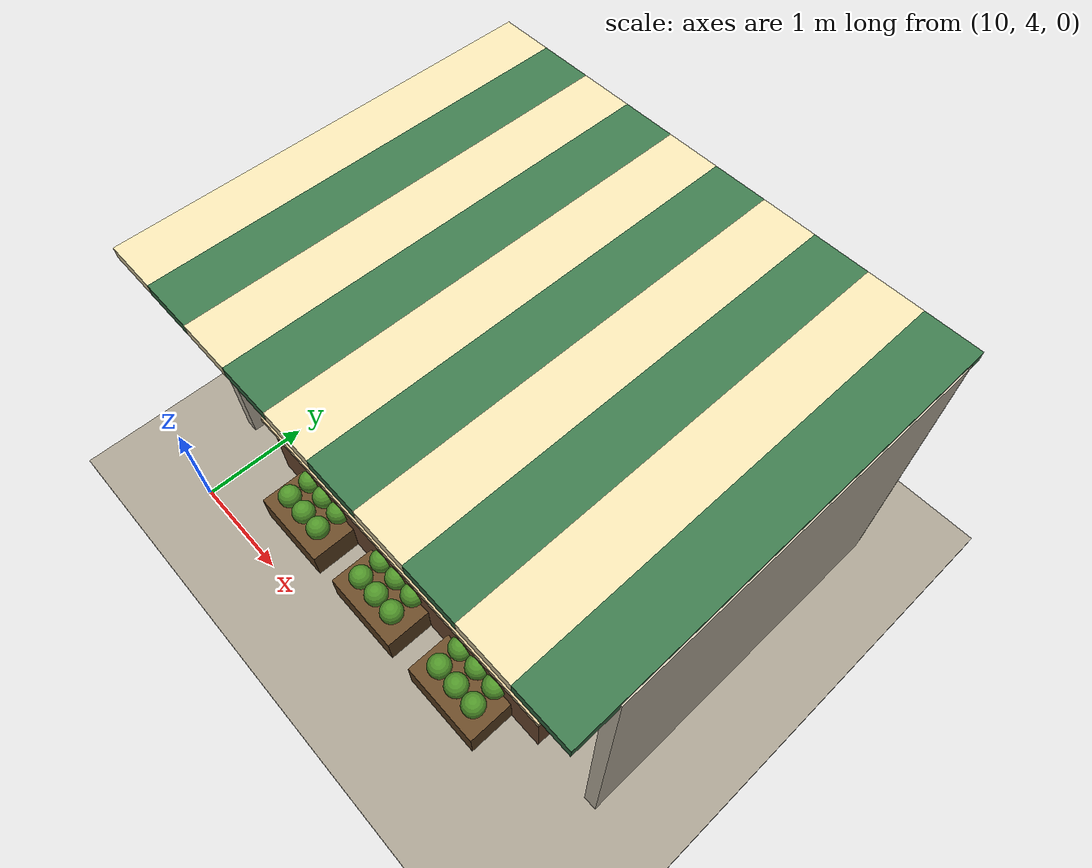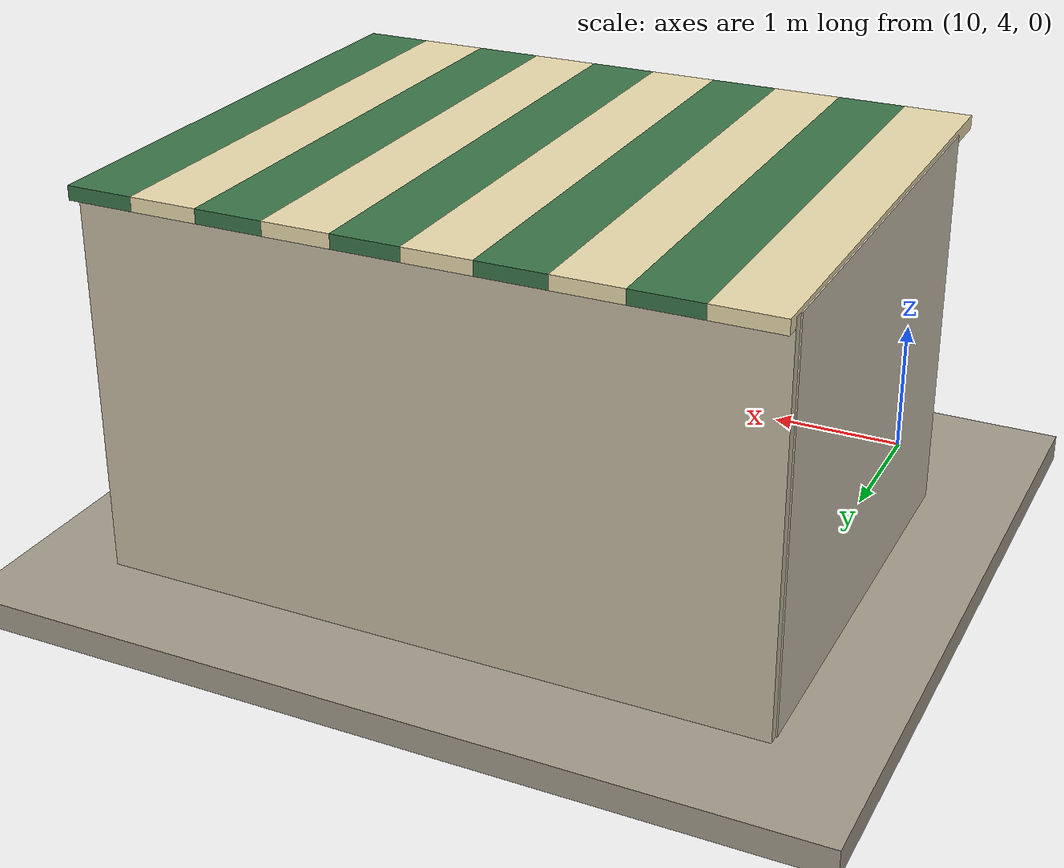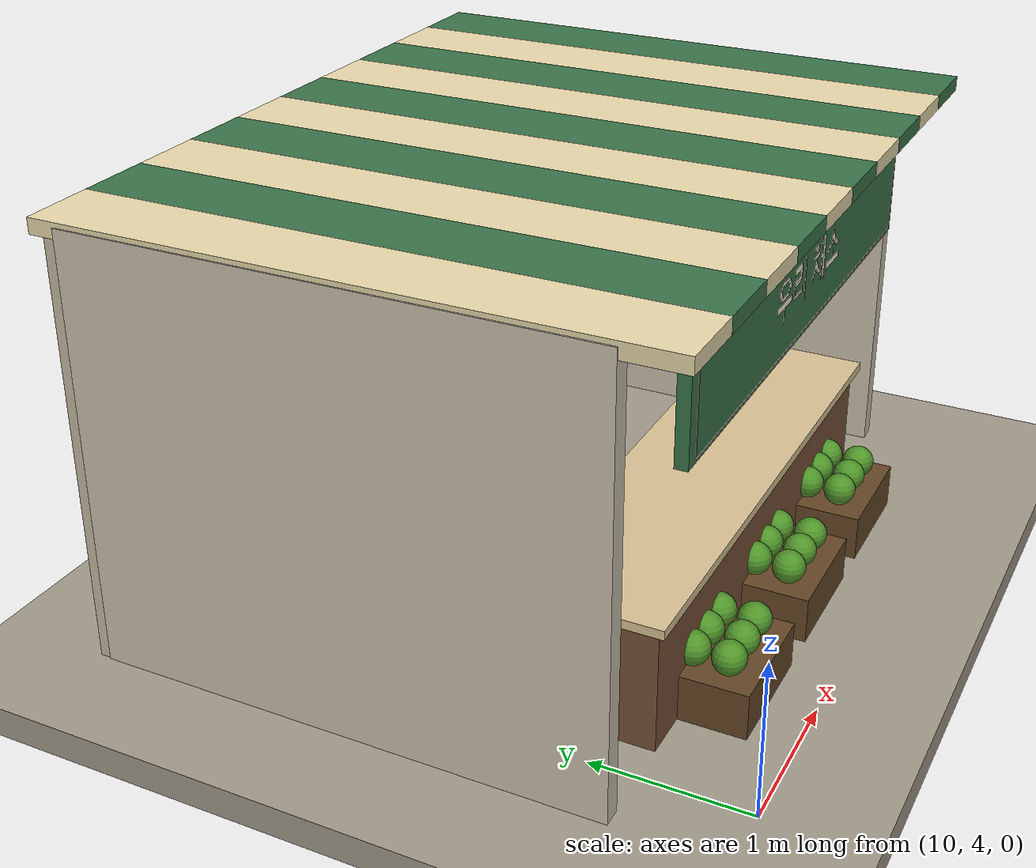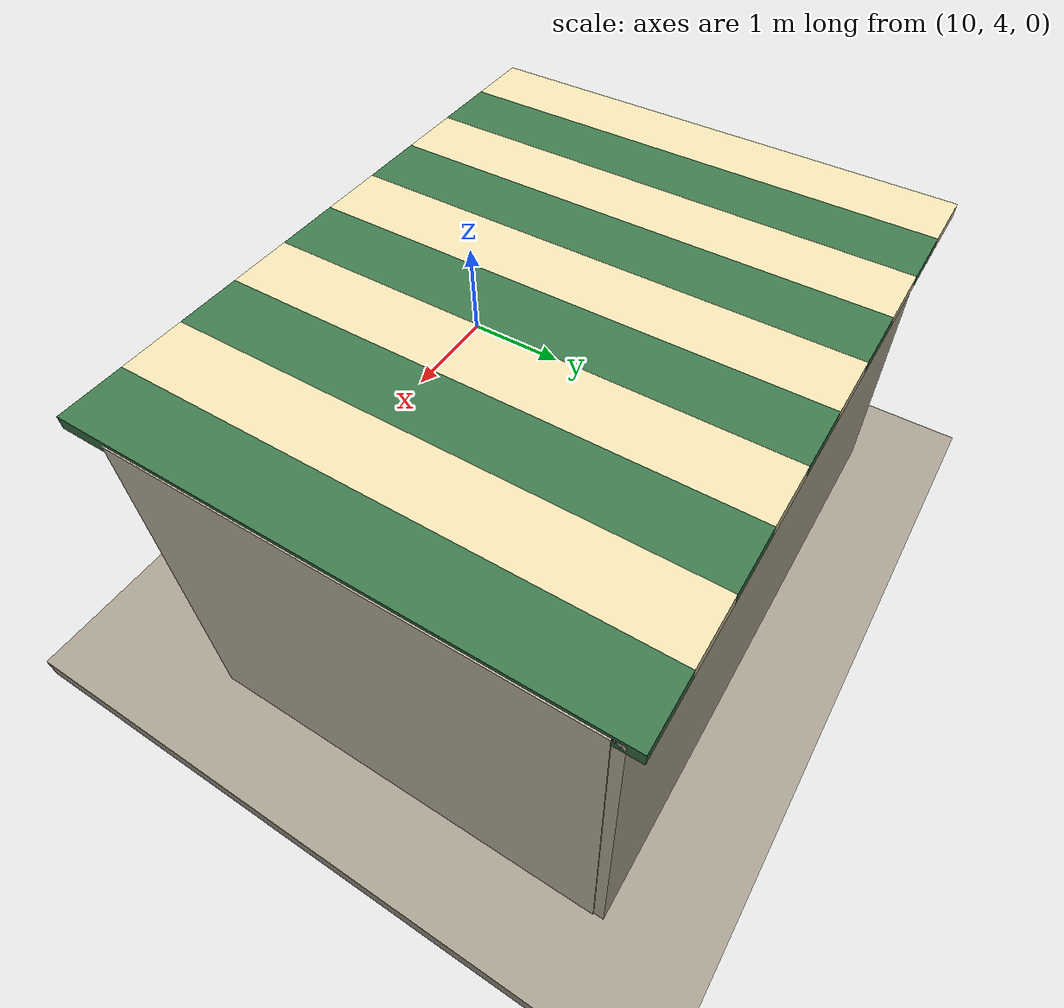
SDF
<sdf version="1.10">
 <world name="swan_town">
  <model name="ground_plane">
   <pose>-14 30 -0.025 0 0 0</pose>
   <static>true</static>
   <link name="link">
    <collision name="collision">
     <geometry><plane><normal>0 0 1</normal><size>100 100</size></plane></geometry>
    </collision>
    <visual name="visual">
     <geometry><plane><normal>0 0 1</normal><size>100 100</size></plane></geometry>
     <material><ambient>0.3 0.5 0.2 1</ambient><diffuse>0.3 0.5 0.2 1</diffuse></material>
    </visual>
   </link>
  </model>
  <model name="ground">
   <static>true</static>
   <pose>15 0 -0.1 0 0 0</pose>
   <link name="body">
    <collision name="box_collision"><geometry><box><size>46 24 0.2</size></box></geometry></collision>
    <visual name="box_visual">
     <geometry><box><size>46 24 0.2</size></box></geometry>
     <material><ambient>0.64 0.61 0.55 1</ambient><diffuse>0.64 0.61 0.55 1</diffuse></material>
    </visual>
   </link>
  </model>
  <model name="stall_01">
   <static>true</static>
   <pose>12 6.3425 0 0 0 0</pose>
   <link name="body">
    <collision name="rear_collision">
     <pose>0 1.65 1.4 0 0 0</pose>
     <geometry><box><size>4.8 0.15 2.8</size></box></geometry>
    </collision>
    <visual name="rear_visual">
     <pose>0 1.65 1.4 0 0 0</pose>
     <geometry><box><size>4.8 0.15 2.8</size></box></geometry>
     <material><ambient>0.78 0.74 0.65 1</ambient><diffuse>0.78 0.74 0.65 1</diffuse></material>
    </visual>
    <collision name="side_-2.35_collision">
     <pose>-2.35 0 1.4 0 0 0</pose>
     <geometry><box><size>0.12 3.3 2.8</size></box></geometry>
    </collision>
    <visual name="side_-2.35_visual">
     <pose>-2.35 0 1.4 0 0 0</pose>
     <geometry><box><size>0.12 3.3 2.8</size></box></geometry>
     <material><ambient>0.81 0.77 0.69 1</ambient><diffuse>0.81 0.77 0.69 1</diffuse></material>
    </visual>
    <collision name="side_2.35_collision">
     <pose>2.35 0 1.4 0 0 0</pose>
     <geometry><box><size>0.12 3.3 2.8</size></box></geometry>
    </collision>
    <visual name="side_2.35_visual">
     <pose>2.35 0 1.4 0 0 0</pose>
     <geometry><box><size>0.12 3.3 2.8</size></box></geometry>
     <material><ambient>0.81 0.77 0.69 1</ambient><diffuse>0.81 0.77 0.69 1</diffuse></material>
    </visual>
    <collision name="counter_collision">
     <pose>0 -1.22 0.4 0 0 0</pose>
     <geometry><box><size>3.5 0.85 0.8</size></box></geometry>
    </collision>
    <visual name="counter_visual">
     <pose>0 -1.22 0.4 0 0 0</pose>
     <geometry><box><size>3.5 0.85 0.8</size></box></geometry>
     <material><ambient>0.47 0.32 0.21 1</ambient><diffuse>0.47 0.32 0.21 1</diffuse></material>
    </visual>
    <collision name="counter_top_collision">
     <pose>0 -1.22 0.83 0 0 0</pose>
     <geometry><box><size>3.6 0.95 0.06</size></box></geometry>
    </collision>
    <visual name="counter_top_visual">
     <pose>0 -1.22 0.83 0 0 0</pose>
     <geometry><box><size>3.6 0.95 0.06</size></box></geometry>
     <material><ambient>0.86 0.77 0.59 1</ambient><diffuse>0.86 0.77 0.59 1</diffuse></material>
    </visual>
    <collision name="awning_0_collision">
     <pose>-2.16 -0.1 2.78 0 0 0</pose>
     <geometry><box><size>0.48 3.85 0.1</size></box></geometry>
    </collision>
    <visual name="awning_0_visual">
     <pose>-2.16 -0.1 2.78 0 0 0</pose>
     <geometry><box><size>0.48 3.85 0.1</size></box></geometry>
     <material><ambient>0.92 0.86 0.68 1</ambient><diffuse>0.92 0.86 0.68 1</diffuse></material>
    </visual>
    <collision name="awning_1_collision">
     <pose>-1.68 -0.1 2.78 0 0 0</pose>
     <geometry><box><size>0.48 3.85 0.1</size></box></geometry>
    </collision>
    <visual name="awning_1_visual">
     <pose>-1.68 -0.1 2.78 0 0 0</pose>
     <geometry><box><size>0.48 3.85 0.1</size></box></geometry>
     <material><ambient>0.23 0.46 0.29 1</ambient><diffuse>0.23 0.46 0.29 1</diffuse></material>
    </visual>
    <collision name="awning_2_collision">
     <pose>-1.2 -0.1 2.78 0 0 0</pose>
     <geometry><box><size>0.48 3.85 0.1</size></box></geometry>
    </collision>
    <visual name="awning_2_visual">
     <pose>-1.2 -0.1 2.78 0 0 0</pose>
     <geometry><box><size>0.48 3.85 0.1</size></box></geometry>
     <material><ambient>0.92 0.86 0.68 1</ambient><diffuse>0.92 0.86 0.68 1</diffuse></material>
    </visual>
    <collision name="awning_3_collision">
     <pose>-0.72 -0.1 2.78 0 0 0</pose>
     <geometry><box><size>0.48 3.85 0.1</size></box></geometry>
    </collision>
    <visual name="awning_3_visual">
     <pose>-0.72 -0.1 2.78 0 0 0</pose>
     <geometry><box><size>0.48 3.85 0.1</size></box></geometry>
     <material><ambient>0.23 0.46 0.29 1</ambient><diffuse>0.23 0.46 0.29 1</diffuse></material>
    </visual>
    <collision name="awning_4_collision">
     <pose>-0.24 -0.1 2.78 0 0 0</pose>
     <geometry><box><size>0.48 3.85 0.1</size></box></geometry>
    </collision>
    <visual name="awning_4_visual">
     <pose>-0.24 -0.1 2.78 0 0 0</pose>
     <geometry><box><size>0.48 3.85 0.1</size></box></geometry>
     <material><ambient>0.92 0.86 0.68 1</ambient><diffuse>0.92 0.86 0.68 1</diffuse></material>
    </visual>
    <collision name="awning_5_collision">
     <pose>0.24 -0.1 2.78 0 0 0</pose>
     <geometry><box><size>0.48 3.85 0.1</size></box></geometry>
    </collision>
    <visual name="awning_5_visual">
     <pose>0.24 -0.1 2.78 0 0 0</pose>
     <geometry><box><size>0.48 3.85 0.1</size></box></geometry>
     <material><ambient>0.23 0.46 0.29 1</ambient><diffuse>0.23 0.46 0.29 1</diffuse></material>
    </visual>
    <collision name="awning_6_collision">
     <pose>0.72 -0.1 2.78 0 0 0</pose>
     <geometry><box><size>0.48 3.85 0.1</size></box></geometry>
    </collision>
    <visual name="awning_6_visual">
     <pose>0.72 -0.1 2.78 0 0 0</pose>
     <geometry><box><size>0.48 3.85 0.1</size></box></geometry>
     <material><ambient>0.92 0.86 0.68 1</ambient><diffuse>0.92 0.86 0.68 1</diffuse></material>
    </visual>
    <collision name="awning_7_collision">
     <pose>1.2 -0.1 2.78 0 0 0</pose>
     <geometry><box><size>0.48 3.85 0.1</size></box></geometry>
    </collision>
    <visual name="awning_7_visual">
     <pose>1.2 -0.1 2.78 0 0 0</pose>
     <geometry><box><size>0.48 3.85 0.1</size></box></geometry>
     <material><ambient>0.23 0.46 0.29 1</ambient><diffuse>0.23 0.46 0.29 1</diffuse></material>
    </visual>
    <collision name="awning_8_collision">
     <pose>1.68 -0.1 2.78 0 0 0</pose>
     <geometry><box><size>0.48 3.85 0.1</size></box></geometry>
    </collision>
    <visual name="awning_8_visual">
     <pose>1.68 -0.1 2.78 0 0 0</pose>
     <geometry><box><size>0.48 3.85 0.1</size></box></geometry>
     <material><ambient>0.92 0.86 0.68 1</ambient><diffuse>0.92 0.86 0.68 1</diffuse></material>
    </visual>
    <collision name="awning_9_collision">
     <pose>2.16 -0.1 2.78 0 0 0</pose>
     <geometry><box><size>0.48 3.85 0.1</size></box></geometry>
    </collision>
    <visual name="awning_9_visual">
     <pose>2.16 -0.1 2.78 0 0 0</pose>
     <geometry><box><size>0.48 3.85 0.1</size></box></geometry>
     <material><ambient>0.23 0.46 0.29 1</ambient><diffuse>0.23 0.46 0.29 1</diffuse></material>
    </visual>
    <collision name="crate_-1_collision">
     <pose>-1.04 -1.77 0.15 0 0 0</pose>
     <geometry><box><size>0.78 0.6 0.3</size></box></geometry>
    </collision>
    <visual name="crate_-1_visual">
     <pose>-1.04 -1.77 0.15 0 0 0</pose>
     <geometry><box><size>0.78 0.6 0.3</size></box></geometry>
     <material><ambient>0.4 0.28 0.15 1</ambient><diffuse>0.4 0.28 0.15 1</diffuse></material>
    </visual>
    <visual name="produce_-1_0_visual">
     <pose>-1.25 -1.88 0.39 0 0 0</pose>
     <geometry><sphere><radius>0.105</radius></sphere></geometry>
     <material><ambient>0.31 0.58 0.16 1</ambient><diffuse>0.31 0.58 0.16 1</diffuse></material>
    </visual>
    <visual name="produce_-1_1_visual">
     <pose>-1.04 -1.88 0.39 0 0 0</pose>
     <geometry><sphere><radius>0.105</radius></sphere></geometry>
     <material><ambient>0.31 0.58 0.16 1</ambient><diffuse>0.31 0.58 0.16 1</diffuse></material>
    </visual>
    <visual name="produce_-1_2_visual">
     <pose>-0.83 -1.88 0.39 0 0 0</pose>
     <geometry><sphere><radius>0.105</radius></sphere></geometry>
     <material><ambient>0.31 0.58 0.16 1</ambient><diffuse>0.31 0.58 0.16 1</diffuse></material>
    </visual>
    <visual name="produce_-1_3_visual">
     <pose>-1.25 -1.66 0.39 0 0 0</pose>
     <geometry><sphere><radius>0.105</radius></sphere></geometry>
     <material><ambient>0.31 0.58 0.16 1</ambient><diffuse>0.31 0.58 0.16 1</diffuse></material>
    </visual>
    <visual name="produce_-1_4_visual">
     <pose>-1.04 -1.66 0.39 0 0 0</pose>
     <geometry><sphere><radius>0.105</radius></sphere></geometry>
     <material><ambient>0.31 0.58 0.16 1</ambient><diffuse>0.31 0.58 0.16 1</diffuse></material>
    </visual>
    <visual name="produce_-1_5_visual">
     <pose>-0.83 -1.66 0.39 0 0 0</pose>
     <geometry><sphere><radius>0.105</radius></sphere></geometry>
     <material><ambient>0.31 0.58 0.16 1</ambient><diffuse>0.31 0.58 0.16 1</diffuse></material>
    </visual>
    <collision name="crate_0_collision">
     <pose>0 -1.77 0.15 0 0 0</pose>
     <geometry><box><size>0.78 0.6 0.3</size></box></geometry>
    </collision>
    <visual name="crate_0_visual">
     <pose>0 -1.77 0.15 0 0 0</pose>
     <geometry><box><size>0.78 0.6 0.3</size></box></geometry>
     <material><ambient>0.4 0.28 0.15 1</ambient><diffuse>0.4 0.28 0.15 1</diffuse></material>
    </visual>
    <visual name="produce_0_0_visual">
     <pose>-0.21 -1.88 0.39 0 0 0</pose>
     <geometry><sphere><radius>0.105</radius></sphere></geometry>
     <material><ambient>0.31 0.58 0.16 1</ambient><diffuse>0.31 0.58 0.16 1</diffuse></material>
    </visual>
    <visual name="produce_0_1_visual">
     <pose>0 -1.88 0.39 0 0 0</pose>
     <geometry><sphere><radius>0.105</radius></sphere></geometry>
     <material><ambient>0.31 0.58 0.16 1</ambient><diffuse>0.31 0.58 0.16 1</diffuse></material>
    </visual>
    <visual name="produce_0_2_visual">
     <pose>0.21 -1.88 0.39 0 0 0</pose>
     <geometry><sphere><radius>0.105</radius></sphere></geometry>
     <material><ambient>0.31 0.58 0.16 1</ambient><diffuse>0.31 0.58 0.16 1</diffuse></material>
    </visual>
    <visual name="produce_0_3_visual">
     <pose>-0.21 -1.66 0.39 0 0 0</pose>
     <geometry><sphere><radius>0.105</radius></sphere></geometry>
     <material><ambient>0.31 0.58 0.16 1</ambient><diffuse>0.31 0.58 0.16 1</diffuse></material>
    </visual>
    <visual name="produce_0_4_visual">
     <pose>0 -1.66 0.39 0 0 0</pose>
     <geometry><sphere><radius>0.105</radius></sphere></geometry>
     <material><ambient>0.31 0.58 0.16 1</ambient><diffuse>0.31 0.58 0.16 1</diffuse></material>
    </visual>
    <visual name="produce_0_5_visual">
     <pose>0.21 -1.66 0.39 0 0 0</pose>
     <geometry><sphere><radius>0.105</radius></sphere></geometry>
     <material><ambient>0.31 0.58 0.16 1</ambient><diffuse>0.31 0.58 0.16 1</diffuse></material>
    </visual>
    <collision name="crate_1_collision">
     <pose>1.04 -1.77 0.15 0 0 0</pose>
     <geometry><box><size>0.78 0.6 0.3</size></box></geometry>
    </collision>
    <visual name="crate_1_visual">
     <pose>1.04 -1.77 0.15 0 0 0</pose>
     <geometry><box><size>0.78 0.6 0.3</size></box></geometry>
     <material><ambient>0.4 0.28 0.15 1</ambient><diffuse>0.4 0.28 0.15 1</diffuse></material>
    </visual>
    <visual name="produce_1_0_visual">
     <pose>0.83 -1.88 0.39 0 0 0</pose>
     <geometry><sphere><radius>0.105</radius></sphere></geometry>
     <material><ambient>0.31 0.58 0.16 1</ambient><diffuse>0.31 0.58 0.16 1</diffuse></material>
    </visual>
    <visual name="produce_1_1_visual">
     <pose>1.04 -1.88 0.39 0 0 0</pose>
     <geometry><sphere><radius>0.105</radius></sphere></geometry>
     <material><ambient>0.31 0.58 0.16 1</ambient><diffuse>0.31 0.58 0.16 1</diffuse></material>
    </visual>
    <visual name="produce_1_2_visual">
     <pose>1.25 -1.88 0.39 0 0 0</pose>
     <geometry><sphere><radius>0.105</radius></sphere></geometry>
     <material><ambient>0.31 0.58 0.16 1</ambient><diffuse>0.31 0.58 0.16 1</diffuse></material>
    </visual>
    <visual name="produce_1_3_visual">
     <pose>0.83 -1.66 0.39 0 0 0</pose>
     <geometry><sphere><radius>0.105</radius></sphere></geometry>
     <material><ambient>0.31 0.58 0.16 1</ambient><diffuse>0.31 0.58 0.16 1</diffuse></material>
    </visual>
    <visual name="produce_1_4_visual">
     <pose>1.04 -1.66 0.39 0 0 0</pose>
     <geometry><sphere><radius>0.105</radius></sphere></geometry>
     <material><ambient>0.31 0.58 0.16 1</ambient><diffuse>0.31 0.58 0.16 1</diffuse></material>
    </visual>
    <visual name="produce_1_5_visual">
     <pose>1.25 -1.66 0.39 0 0 0</pose>
     <geometry><sphere><radius>0.105</radius></sphere></geometry>
     <material><ambient>0.31 0.58 0.16 1</ambient><diffuse>0.31 0.58 0.16 1</diffuse></material>
    </visual>
   </link>
  </model>
  <model name="signboard_1">
   <static>true</static>
   <pose>12 4.5825 2.24 0 0 0</pose>
   <link name="body">
    <collision name="box_collision"><geometry><box><size>3.65 0.08 0.72</size></box></geometry></collision>
    <visual name="box_visual">
     <geometry><box><size>3.65 0.08 0.72</size></box></geometry>
     <material><ambient>0.23 0.46 0.29 1</ambient><diffuse>0.23 0.46 0.29 1</diffuse></material>
    </visual>
   </link>
  </model>
  <model name="sign_shop_1">
   <static>true</static>
   <pose>12 4.5345 2.24 0 0 0</pose>
   <link name="body">
    <visual name="top_visual">
     <pose>0 -0.003 0.32062 0 0 0</pose>
     <geometry><box><size>3.5136 0.003 0.0108</size></box></geometry>
     <material><ambient>1 0.961 0.875 1</ambient><diffuse>1 0.961 0.875 1</diffuse></material>
    </visual>
    <visual name="bottom_visual">
     <pose>0 -0.003 -0.32062 0 0 0</pose>
     <geometry><box><size>3.5136 0.003 0.0108</size></box></geometry>
     <material><ambient>1 0.961 0.875 1</ambient><diffuse>1 0.961 0.875 1</diffuse></material>
    </visual>
    <visual name="left_visual">
     <pose>-1.7568 -0.003 0 0 0 0</pose>
     <geometry><box><size>0.0108 0.003 0.64125</size></box></geometry>
     <material><ambient>1 0.961 0.875 1</ambient><diffuse>1 0.961 0.875 1</diffuse></material>
    </visual>
    <visual name="right_visual">
     <pose>1.7568 -0.003 0 0 0 0</pose>
     <geometry><box><size>0.0108 0.003 0.64125</size></box></geometry>
     <material><ambient>1 0.961 0.875 1</ambient><diffuse>1 0.961 0.875 1</diffuse></material>
    </visual>
    <visual name="ink_0_visual">
     <pose>-0.44062 -0.003 0.15938 0 0 0</pose>
     <geometry><box><size>0.01875 0.003 0.01875</size></box></geometry>
     <material><ambient>1 0.961 0.875 1</ambient><diffuse>1 0.961 0.875 1</diffuse></material>
    </visual>
    <visual name="ink_1_visual">
     <pose>-0.44062 -0.003 0.14062 0 0 0</pose>
     <geometry><box><size>0.13125 0.003 0.01875</size></box></geometry>
     <material><ambient>1 0.961 0.875 1</ambient><diffuse>1 0.961 0.875 1</diffuse></material>
    </visual>
    <visual name="ink_2_visual">
     <pose>0.1125 -0.003 0.14062 0 0 0</pose>
     <geometry><box><size>0.075 0.003 0.01875</size></box></geometry>
     <material><ambient>1 0.961 0.875 1</ambient><diffuse>1 0.961 0.875 1</diffuse></material>
    </visual>
    <visual name="ink_3_visual">
     <pose>-0.50625 -0.003 0.12188 0 0 0</pose>
     <geometry><box><size>0.0375 0.003 0.01875</size></box></geometry>
     <material><ambient>1 0.961 0.875 1</ambient><diffuse>1 0.961 0.875 1</diffuse></material>
    </visual>
    <visual name="ink_4_visual">
     <pose>-0.375 -0.003 0.12188 0 0 0</pose>
     <geometry><box><size>0.0375 0.003 0.01875</size></box></geometry>
     <material><ambient>1 0.961 0.875 1</ambient><diffuse>1 0.961 0.875 1</diffuse></material>
    </visual>
    <visual name="ink_5_visual">
     <pose>-0.21562 -0.003 0.13125 0 0 0</pose>
     <geometry><box><size>0.13125 0.003 0.0375</size></box></geometry>
     <material><ambient>1 0.961 0.875 1</ambient><diffuse>1 0.961 0.875 1</diffuse></material>
    </visual>
    <visual name="ink_6_visual">
     <pose>0.12187 -0.003 0.12188 0 0 0</pose>
     <geometry><box><size>0.05625 0.003 0.01875</size></box></geometry>
     <material><ambient>1 0.961 0.875 1</ambient><diffuse>1 0.961 0.875 1</diffuse></material>
    </visual>
    <visual name="ink_7_visual">
     <pose>0.44063 -0.003 0.13125 0 0 0</pose>
     <geometry><box><size>0.01875 0.003 0.0375</size></box></geometry>
     <material><ambient>1 0.961 0.875 1</ambient><diffuse>1 0.961 0.875 1</diffuse></material>
    </visual>
    <visual name="ink_8_visual">
     <pose>-0.525 -0.003 0.09375 0 0 0</pose>
     <geometry><box><size>0.0375 0.003 0.0375</size></box></geometry>
     <material><ambient>1 0.961 0.875 1</ambient><diffuse>1 0.961 0.875 1</diffuse></material>
    </visual>
    <visual name="ink_9_visual">
     <pose>-0.35625 -0.003 0.09375 0 0 0</pose>
     <geometry><box><size>0.0375 0.003 0.0375</size></box></geometry>
     <material><ambient>1 0.961 0.875 1</ambient><diffuse>1 0.961 0.875 1</diffuse></material>
    </visual>
    <visual name="ink_10_visual">
     <pose>-0.16875 -0.003 0.09375 0 0 0</pose>
     <geometry><box><size>0.0375 0.003 0.0375</size></box></geometry>
     <material><ambient>1 0.961 0.875 1</ambient><diffuse>1 0.961 0.875 1</diffuse></material>
    </visual>
    <visual name="ink_11_visual">
     <pose>0.12187 -0.003 0.084375 0 0 0</pose>
     <geometry><box><size>0.13125 0.003 0.01875</size></box></geometry>
     <material><ambient>1 0.961 0.875 1</ambient><diffuse>1 0.961 0.875 1</diffuse></material>
    </visual>
    <visual name="ink_12_visual">
     <pose>0.44063 -0.003 0.09375 0 0 0</pose>
     <geometry><box><size>0.05625 0.003 0.0375</size></box></geometry>
     <material><ambient>1 0.961 0.875 1</ambient><diffuse>1 0.961 0.875 1</diffuse></material>
    </visual>
    <visual name="ink_13_visual">
     <pose>-0.50625 -0.003 0.065625 0 0 0</pose>
     <geometry><box><size>0.0375 0.003 0.01875</size></box></geometry>
     <material><ambient>1 0.961 0.875 1</ambient><diffuse>1 0.961 0.875 1</diffuse></material>
    </visual>
    <visual name="ink_14_visual">
     <pose>-0.375 -0.003 0.065625 0 0 0</pose>
     <geometry><box><size>0.0375 0.003 0.01875</size></box></geometry>
     <material><ambient>1 0.961 0.875 1</ambient><diffuse>1 0.961 0.875 1</diffuse></material>
    </visual>
    <visual name="ink_15_visual">
     <pose>-0.21562 -0.003 0.065625 0 0 0</pose>
     <geometry><box><size>0.13125 0.003 0.01875</size></box></geometry>
     <material><ambient>1 0.961 0.875 1</ambient><diffuse>1 0.961 0.875 1</diffuse></material>
    </visual>
    <visual name="ink_16_visual">
     <pose>0.12187 -0.003 0.065625 0 0 0</pose>
     <geometry><box><size>0.01875 0.003 0.01875</size></box></geometry>
     <material><ambient>1 0.961 0.875 1</ambient><diffuse>1 0.961 0.875 1</diffuse></material>
    </visual>
    <visual name="ink_17_visual">
     <pose>0.21563 -0.003 0.1125 0 0 0</pose>
     <geometry><box><size>0.01875 0.003 0.1125</size></box></geometry>
     <material><ambient>1 0.961 0.875 1</ambient><diffuse>1 0.961 0.875 1</diffuse></material>
    </visual>
    <visual name="ink_18_visual">
     <pose>0.2625 -0.003 0.1125 0 0 0</pose>
     <geometry><box><size>0.0375 0.003 0.1125</size></box></geometry>
     <material><ambient>1 0.961 0.875 1</ambient><diffuse>1 0.961 0.875 1</diffuse></material>
    </visual>
    <visual name="ink_19_visual">
     <pose>0.4125 -0.003 0.065625 0 0 0</pose>
     <geometry><box><size>0.0375 0.003 0.01875</size></box></geometry>
     <material><ambient>1 0.961 0.875 1</ambient><diffuse>1 0.961 0.875 1</diffuse></material>
    </visual>
    <visual name="ink_20_visual">
     <pose>0.46875 -0.003 0.065625 0 0 0</pose>
     <geometry><box><size>0.0375 0.003 0.01875</size></box></geometry>
     <material><ambient>1 0.961 0.875 1</ambient><diffuse>1 0.961 0.875 1</diffuse></material>
    </visual>
    <visual name="ink_21_visual">
     <pose>-0.44062 -0.003 0.046875 0 0 0</pose>
     <geometry><box><size>0.13125 0.003 0.01875</size></box></geometry>
     <material><ambient>1 0.961 0.875 1</ambient><diffuse>1 0.961 0.875 1</diffuse></material>
    </visual>
    <visual name="ink_22_visual">
     <pose>-0.225 -0.003 0.046875 0 0 0</pose>
     <geometry><box><size>0.1125 0.003 0.01875</size></box></geometry>
     <material><ambient>1 0.961 0.875 1</ambient><diffuse>1 0.961 0.875 1</diffuse></material>
    </visual>
    <visual name="ink_23_visual">
     <pose>0.1125 -0.003 0.046875 0 0 0</pose>
     <geometry><box><size>0.0375 0.003 0.01875</size></box></geometry>
     <material><ambient>1 0.961 0.875 1</ambient><diffuse>1 0.961 0.875 1</diffuse></material>
    </visual>
    <visual name="ink_24_visual">
     <pose>0.24375 -0.003 0.046875 0 0 0</pose>
     <geometry><box><size>0.075 0.003 0.01875</size></box></geometry>
     <material><ambient>1 0.961 0.875 1</ambient><diffuse>1 0.961 0.875 1</diffuse></material>
    </visual>
    <visual name="ink_25_visual">
     <pose>0.38438 -0.003 0.046875 0 0 0</pose>
     <geometry><box><size>0.05625 0.003 0.01875</size></box></geometry>
     <material><ambient>1 0.961 0.875 1</ambient><diffuse>1 0.961 0.875 1</diffuse></material>
    </visual>
    <visual name="ink_26_visual">
     <pose>0.49688 -0.003 0.046875 0 0 0</pose>
     <geometry><box><size>0.05625 0.003 0.01875</size></box></geometry>
     <material><ambient>1 0.961 0.875 1</ambient><diffuse>1 0.961 0.875 1</diffuse></material>
    </visual>
    <visual name="ink_27_visual">
     <pose>0.35625 -0.003 0.028125 0 0 0</pose>
     <geometry><box><size>0.0375 0.003 0.01875</size></box></geometry>
     <material><ambient>1 0.961 0.875 1</ambient><diffuse>1 0.961 0.875 1</diffuse></material>
    </visual>
    <visual name="ink_28_visual">
     <pose>0.525 -0.003 0.028125 0 0 0</pose>
     <geometry><box><size>0.0375 0.003 0.01875</size></box></geometry>
     <material><ambient>1 0.961 0.875 1</ambient><diffuse>1 0.961 0.875 1</diffuse></material>
    </visual>
    <visual name="ink_29_visual">
     <pose>0.12187 -0.003 0.01875 0 0 0</pose>
     <geometry><box><size>0.05625 0.003 0.0375</size></box></geometry>
     <material><ambient>1 0.961 0.875 1</ambient><diffuse>1 0.961 0.875 1</diffuse></material>
    </visual>
    <visual name="ink_30_visual">
     <pose>-0.44062 -0.003 0 0 0 0</pose>
     <geometry><box><size>0.24375 0.003 0.0375</size></box></geometry>
     <material><ambient>1 0.961 0.875 1</ambient><diffuse>1 0.961 0.875 1</diffuse></material>
    </visual>
    <visual name="ink_31_visual">
     <pose>-0.27187 -0.003 0.009375 0 0 0</pose>
     <geometry><box><size>0.01875 0.003 0.05625</size></box></geometry>
     <material><ambient>1 0.961 0.875 1</ambient><diffuse>1 0.961 0.875 1</diffuse></material>
    </visual>
    <visual name="ink_32_visual">
     <pose>-0.14062 -0.003 -0.009375 0 0 0</pose>
     <geometry><box><size>0.01875 0.003 0.01875</size></box></geometry>
     <material><ambient>1 0.961 0.875 1</ambient><diffuse>1 0.961 0.875 1</diffuse></material>
    </visual>
    <visual name="ink_33_visual">
     <pose>0.09375 -0.003 -0.009375 0 0 0</pose>
     <geometry><box><size>0.0375 0.003 0.01875</size></box></geometry>
     <material><ambient>1 0.961 0.875 1</ambient><diffuse>1 0.961 0.875 1</diffuse></material>
    </visual>
    <visual name="ink_34_visual">
     <pose>0.15 -0.003 -0.009375 0 0 0</pose>
     <geometry><box><size>0.0375 0.003 0.01875</size></box></geometry>
     <material><ambient>1 0.961 0.875 1</ambient><diffuse>1 0.961 0.875 1</diffuse></material>
    </visual>
    <visual name="ink_35_visual">
     <pose>-0.20625 -0.003 -0.028125 0 0 0</pose>
     <geometry><box><size>0.15 0.003 0.01875</size></box></geometry>
     <material><ambient>1 0.961 0.875 1</ambient><diffuse>1 0.961 0.875 1</diffuse></material>
    </visual>
    <visual name="ink_36_visual">
     <pose>0.075 -0.003 -0.028125 0 0 0</pose>
     <geometry><box><size>0.0375 0.003 0.01875</size></box></geometry>
     <material><ambient>1 0.961 0.875 1</ambient><diffuse>1 0.961 0.875 1</diffuse></material>
    </visual>
    <visual name="ink_37_visual">
     <pose>0.16875 -0.003 -0.028125 0 0 0</pose>
     <geometry><box><size>0.0375 0.003 0.01875</size></box></geometry>
     <material><ambient>1 0.961 0.875 1</ambient><diffuse>1 0.961 0.875 1</diffuse></material>
    </visual>
    <visual name="ink_38_visual">
     <pose>0.44063 -0.003 -0.009375 0 0 0</pose>
     <geometry><box><size>0.01875 0.003 0.05625</size></box></geometry>
     <material><ambient>1 0.961 0.875 1</ambient><diffuse>1 0.961 0.875 1</diffuse></material>
    </visual>
    <visual name="ink_39_visual">
     <pose>0.065625 -0.003 -0.046875 0 0 0</pose>
     <geometry><box><size>0.01875 0.003 0.01875</size></box></geometry>
     <material><ambient>1 0.961 0.875 1</ambient><diffuse>1 0.961 0.875 1</diffuse></material>
    </visual>
    <visual name="ink_40_visual">
     <pose>0.44063 -0.003 -0.05625 0 0 0</pose>
     <geometry><box><size>0.24375 0.003 0.0375</size></box></geometry>
     <material><ambient>1 0.961 0.875 1</ambient><diffuse>1 0.961 0.875 1</diffuse></material>
    </visual>
    <visual name="ink_41_visual">
     <pose>0.21563 -0.003 -0.028125 0 0 0</pose>
     <geometry><box><size>0.01875 0.003 0.13125</size></box></geometry>
     <material><ambient>1 0.961 0.875 1</ambient><diffuse>1 0.961 0.875 1</diffuse></material>
    </visual>
    <visual name="ink_42_visual">
     <pose>0.2625 -0.003 -0.028125 0 0 0</pose>
     <geometry><box><size>0.0375 0.003 0.13125</size></box></geometry>
     <material><ambient>1 0.961 0.875 1</ambient><diffuse>1 0.961 0.875 1</diffuse></material>
    </visual>
    <visual name="ink_43_visual">
     <pose>-0.44062 -0.003 -0.065625 0 0 0</pose>
     <geometry><box><size>0.01875 0.003 0.09375</size></box></geometry>
     <material><ambient>1 0.961 0.875 1</ambient><diffuse>1 0.961 0.875 1</diffuse></material>
    </visual>
    <visual name="ink_44_visual">
     <pose>-0.084375 -0.003 0.028125 0 0 0</pose>
     <geometry><box><size>0.01875 0.003 0.28125</size></box></geometry>
     <material><ambient>1 0.961 0.875 1</ambient><diffuse>1 0.961 0.875 1</diffuse></material>
    </visual>
    <visual name="ink_45_visual">
     <pose>0.27188 -0.003 -0.10313 0 0 0</pose>
     <geometry><box><size>0.01875 0.003 0.01875</size></box></geometry>
     <material><ambient>1 0.961 0.875 1</ambient><diffuse>1 0.961 0.875 1</diffuse></material>
    </visual>
   </link>
  </model>
 </world>
</sdf>
